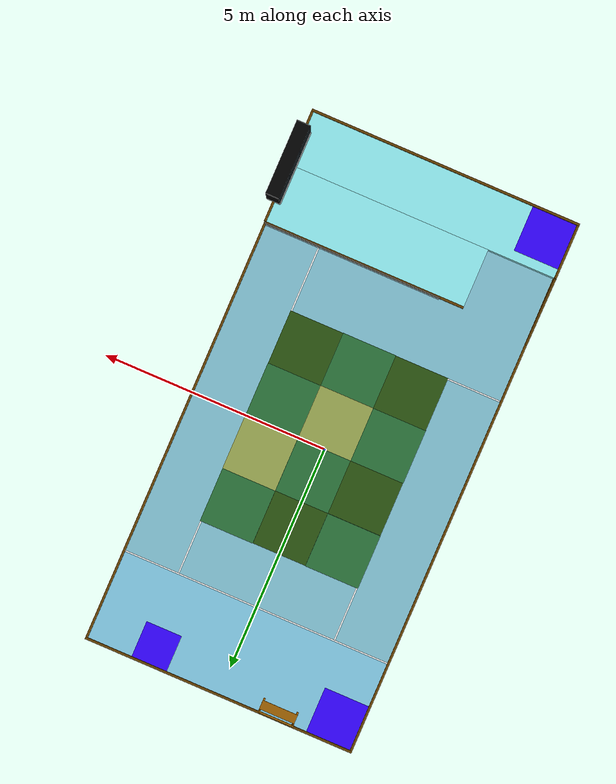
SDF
<sdf version="1.8">
 <world name="robocon_2026">
  <physics name="1ms" type="ignored">
   <max_step_size>0.001</max_step_size>
   <real_time_factor>1.0</real_time_factor>
  </physics>
  <plugin filename="ignition-gazebo-physics-system" name="ignition::gazebo::systems::Physics"/>
  <plugin filename="ignition-gazebo-user-commands-system" name="ignition::gazebo::systems::UserCommands"/>
  <plugin filename="ignition-gazebo-scene-broadcaster-system" name="ignition::gazebo::systems::SceneBroadcaster"/>
  <light type="directional" name="sun">
   <pose>0 0 5 0 0 0</pose>
   <diffuse>0.8 0.8 0.8 1</diffuse>
   <specular>0.2 0.2 0.2 1</specular>
  </light>
  <model name="game_field_floor_1">
   <static>true</static>
   <pose>0 4.6 0.025 0 0 0</pose>
   <link name="link">
    <collision name="collision"><geometry><box><size>6.0 2 0.05</size></box></geometry></collision>
    <visual name="visual">
     <geometry><box><size>6.0 2 0.05</size></box></geometry>
     <material>
      <ambient>0.5019607843 0.7803921569 0.8862745098 1</ambient>
      <diffuse>0.5019607843 0.7803921569 0.8862745098 1</diffuse>
      <specular>0.1 0.1 0.1 1</specular>
     </material>
    </visual>
   </link>
  </model>
  <model name="game_field_floor_2">
   <static>true</static>
   <pose>0 -1.4 0.025 0 0 0</pose>
   <link name="link">
    <collision name="collision"><geometry><box><size>6.0 10 0.05</size></box></geometry></collision>
    <visual name="visual">
     <geometry><box><size>6.0 10 0.05</size></box></geometry>
     <material>
      <ambient>0.5019607843 0.7490196078 0.8196078431 1</ambient>
      <diffuse>0.5019607843 0.7490196078 0.8196078431 1</diffuse>
      <specular>0.1 0.1 0.1 1</specular>
     </material>
    </visual>
   </link>
  </model>
  <model name="game_field_floor_3.1">
   <static>true</static>
   <pose>0.75 -4.55 0.25 0 0 0</pose>
   <link name="link">
    <collision name="collision"><geometry><box><size>4.5 1.3 0.4</size></box></geometry></collision>
    <visual name="visual">
     <geometry><box><size>4.5 1.3 0.4</size></box></geometry>
     <material>
      <ambient>0.5733333333 0.9333333333 0.9511111111 1</ambient>
      <diffuse>0.5733333333 0.9333333333 0.9511111111 1</diffuse>
      <specular>0.1 0.1 0.1 1</specular>
     </material>
    </visual>
   </link>
  </model>
  <model name="game_field_floor_3.2">
   <static>true</static>
   <pose>0 -5.8 0.25 0 0 0</pose>
   <link name="link">
    <collision name="collision"><geometry><box><size>6 1.2 0.4</size></box></geometry></collision>
    <visual name="visual">
     <geometry><box><size>6 1.2 0.4</size></box></geometry>
     <material>
      <ambient>0.5733333333 0.9333333333 0.9511111111 1</ambient>
      <diffuse>0.5733333333 0.9333333333 0.9511111111 1</diffuse>
      <specular>0.1 0.1 0.1 1</specular>
     </material>
    </visual>
   </link>
  </model>
  <model name="retry_zone_1">
   <static>true</static>
   <pose>-2.5 5.1 0.051 0 0 0</pose>
   <link name="link">
    <collision name="collision"><geometry><box><size>1 1 0.000001</size></box></geometry></collision>
    <visual name="visual">
     <geometry><box><size>1 1 0.000001</size></box></geometry>
     <material><ambient>0.1960784314 0 1 1</ambient><diffuse>0.1960784314 0 1 1</diffuse></material>
    </visual>
   </link>
  </model>
  <model name="retry_zone_2">
   <static>true</static>
   <pose>1.6 5.2 0.051 0 0 0</pose>
   <link name="link">
    <collision name="collision"><geometry><box><size>1 1 0.000001</size></box></geometry></collision>
    <visual name="visual">
     <geometry><box><size>0.8 0.8 0.000001</size></box></geometry>
     <material><ambient>0.1960784314 0 1 1</ambient><diffuse>0.1960784314 0 1 1</diffuse></material>
    </visual>
   </link>
  </model>
  <model name="retry_zone_3">
   <static>true</static>
   <pose>-2.5 -5.9 0.4501 0 0 0</pose>
   <link name="link">
    <collision name="collision"><geometry><box><size>1 1 0.000001</size></box></geometry></collision>
    <visual name="visual">
     <geometry><box><size>1 1 0.000001</size></box></geometry>
     <material><ambient>0.1960784314 0 1 1</ambient><diffuse>0.1960784314 0 1 1</diffuse></material>
    </visual>
   </link>
  </model>
  <model name="mat_space_1_H">
   <static>true</static>
   <pose>0 3.615 0.05001 0 0 0</pose>
   <link name="link">
    <collision name="collision"><geometry><box><size>6 0.03 0.00001</size></box></geometry></collision>
    <visual name="visual">
     <geometry><box><size>6 0.03 0.00001</size></box></geometry>
     <material><ambient>1 1 1 1</ambient><diffuse>1 1 1 1</diffuse><emissive>1 1 1 1</emissive></material>
    </visual>
   </link>
  </model>
  <model name="mat_space_2_V">
   <static>true</static>
   <pose>-1.785 3 0.05001 0 0 0</pose>
   <link name="link">
    <collision name="collision"><geometry><box><size>0.03 1.2 0.00001</size></box></geometry></collision>
    <visual name="visual">
     <geometry><box><size>0.03 1.2 0.00001</size></box></geometry>
     <material><ambient>1 1 1 1</ambient><diffuse>1 1 1 1</diffuse><emissive>1 1 1 1</emissive></material>
    </visual>
   </link>
  </model>
  <model name="mat_space_3_V">
   <static>true</static>
   <pose>1.785 3 0.05001 0 0 0</pose>
   <link name="link">
    <collision name="collision"><geometry><box><size>0.03 1.2 0.00001</size></box></geometry></collision>
    <visual name="visual">
     <geometry><box><size>0.03 1.2 0.00001</size></box></geometry>
     <material><ambient>1 1 1 1</ambient><diffuse>1 1 1 1</diffuse><emissive>1 1 1 1</emissive></material>
    </visual>
   </link>
  </model>
  <model name="mat_space_4_H">
   <static>true</static>
   <pose>-2.4 -2.385 0.05001 0 0 0</pose>
   <link name="link">
    <collision name="collision"><geometry><box><size>1.2 0.03 0.00001</size></box></geometry></collision>
    <visual name="visual">
     <geometry><box><size>1.2 0.03 0.00001</size></box></geometry>
     <material><ambient>1 1 1 1</ambient><diffuse>1 1 1 1</diffuse><emissive>1 1 1 1</emissive></material>
    </visual>
   </link>
  </model>
  <model name="mat_space_5_V">
   <static>true</static>
   <pose>1.785 -3.125 0.05001 0 0 0</pose>
   <link name="link">
    <collision name="collision"><geometry><box><size>0.03 1.45 0.00001</size></box></geometry></collision>
    <visual name="visual">
     <geometry><box><size>0.03 1.45 0.00001</size></box></geometry>
     <material><ambient>1 1 1 1</ambient><diffuse>1 1 1 1</diffuse><emissive>1 1 1 1</emissive></material>
    </visual>
   </link>
  </model>
  <model name="forest_box_1_400H">
   <static>true</static>
   <pose>-1.2 1.8 0.225 0 0 0</pose>
   <link name="link">
    <collision name="collision"><geometry><box><size>1.2 1.2 0.4</size></box></geometry></collision>
    <visual name="visual">
     <geometry><box><size>1.2 1.2 0.4</size></box></geometry>
     <material>
      <ambient>0.1647058824 0.4431372549 0.2196078431 1</ambient>
      <diffuse>0.1647058824 0.4431372549 0.2196078431 1</diffuse>
     </material>
    </visual>
   </link>
  </model>
  <model name="forest_box_2_200H">
   <static>true</static>
   <pose>0 1.8 0.125 0 0 0</pose>
   <link name="link">
    <collision name="collision"><geometry><box><size>1.2 1.2 0.2</size></box></geometry></collision>
    <visual name="visual">
     <geometry><box><size>1.2 1.2 0.2</size></box></geometry>
     <material>
      <ambient>0.1607843137 0.3215686275 0.06274509804 1</ambient>
      <diffuse>0.1607843137 0.3215686275 0.06274509804 1</diffuse>
     </material>
    </visual>
   </link>
  </model>
  <model name="forest_box_3_400H">
   <static>true</static>
   <pose>1.2 1.8 0.225 0 0 0</pose>
   <link name="link">
    <collision name="collision"><geometry><box><size>1.2 1.2 0.4</size></box></geometry></collision>
    <visual name="visual">
     <geometry><box><size>1.2 1.2 0.4</size></box></geometry>
     <material>
      <ambient>0.1647058824 0.4431372549 0.2196078431 1</ambient>
      <diffuse>0.1647058824 0.4431372549 0.2196078431 1</diffuse>
     </material>
    </visual>
   </link>
  </model>
  <model name="forest_box_4_200H">
   <static>true</static>
   <pose>-1.2 0.6 0.125 0 0 0</pose>
   <link name="link">
    <collision name="collision"><geometry><box><size>1.2 1.2 0.2</size></box></geometry></collision>
    <visual name="visual">
     <geometry><box><size>1.2 1.2 0.2</size></box></geometry>
     <material>
      <ambient>0.1607843137 0.3215686275 0.06274509804 1</ambient>
      <diffuse>0.1607843137 0.3215686275 0.06274509804 1</diffuse>
     </material>
    </visual>
   </link>
  </model>
  <model name="forest_box_5_400H">
   <static>true</static>
   <pose>0 0.6 0.225 0 0 0</pose>
   <link name="link">
    <collision name="collision"><geometry><box><size>1.2 1.2 0.4</size></box></geometry></collision>
    <visual name="visual">
     <geometry><box><size>1.2 1.2 0.4</size></box></geometry>
     <material>
      <ambient>0.1647058824 0.4431372549 0.2196078431 1</ambient>
      <diffuse>0.1647058824 0.4431372549 0.2196078431 1</diffuse>
     </material>
    </visual>
   </link>
  </model>
  <model name="forest_box_6_600H">
   <static>true</static>
   <pose>1.2 0.6 0.325 0 0 0</pose>
   <link name="link">
    <collision name="collision"><geometry><box><size>1.2 1.2 0.6</size></box></geometry></collision>
    <visual name="visual">
     <geometry><box><size>1.2 1.2 0.6</size></box></geometry>
     <material>
      <ambient>0.5960784314 0.6509803922 0.3137254902 1</ambient>
      <diffuse>0.5960784314 0.6509803922 0.3137254902 1</diffuse>
     </material>
    </visual>
   </link>
  </model>
  <model name="forest_box_7_400H">
   <static>true</static>
   <pose>-1.2 -0.6 0.225 0 0 0</pose>
   <link name="link">
    <collision name="collision"><geometry><box><size>1.2 1.2 0.4</size></box></geometry></collision>
    <visual name="visual">
     <geometry><box><size>1.2 1.2 0.4</size></box></geometry>
     <material>
      <ambient>0.1647058824 0.4431372549 0.2196078431 1</ambient>
      <diffuse>0.1647058824 0.4431372549 0.2196078431 1</diffuse>
     </material>
    </visual>
   </link>
  </model>
  <model name="forest_box_8_600H">
   <static>true</static>
   <pose>0 -0.6 0.325 0 0 0</pose>
   <link name="link">
    <collision name="collision"><geometry><box><size>1.2 1.2 0.6</size></box></geometry></collision>
    <visual name="visual">
     <geometry><box><size>1.2 1.2 0.6</size></box></geometry>
     <material>
      <ambient>0.5960784314 0.6509803922 0.3137254902 1</ambient>
      <diffuse>0.5960784314 0.6509803922 0.3137254902 1</diffuse>
     </material>
    </visual>
   </link>
  </model>
  <model name="forest_box_9_400H">
   <static>true</static>
   <pose>1.2 -0.6 0.225 0 0 0</pose>
   <link name="link">
    <collision name="collision"><geometry><box><size>1.2 1.2 0.4</size></box></geometry></collision>
    <visual name="visual">
     <geometry><box><size>1.2 1.2 0.4</size></box></geometry>
     <material>
      <ambient>0.1647058824 0.4431372549 0.2196078431 1</ambient>
      <diffuse>0.1647058824 0.4431372549 0.2196078431 1</diffuse>
     </material>
    </visual>
   </link>
  </model>
  <model name="forest_box_10_200H">
   <static>true</static>
   <pose>-1.2 -1.8 0.125 0 0 0</pose>
   <link name="link">
    <collision name="collision"><geometry><box><size>1.2 1.2 0.2</size></box></geometry></collision>
    <visual name="visual">
     <geometry><box><size>1.2 1.2 0.2</size></box></geometry>
     <material>
      <ambient>0.1607843137 0.3215686275 0.06274509804 1</ambient>
      <diffuse>0.1607843137 0.3215686275 0.06274509804 1</diffuse>
     </material>
    </visual>
   </link>
  </model>
  <model name="forest_box_11_400H">
   <static>true</static>
   <pose>0 -1.8 0.225 0 0 0</pose>
   <link name="link">
    <collision name="collision"><geometry><box><size>1.2 1.2 0.4</size></box></geometry></collision>
    <visual name="visual">
     <geometry><box><size>1.2 1.2 0.4</size></box></geometry>
     <material>
      <ambient>0.1647058824 0.4431372549 0.2196078431 1</ambient>
      <diffuse>0.1647058824 0.4431372549 0.2196078431 1</diffuse>
     </material>
    </visual>
   </link>
  </model>
  <model name="forest_box_12_200H">
   <static>true</static>
   <pose>1.2 -1.8 0.125 0 0 0</pose>
   <link name="link">
    <collision name="collision"><geometry><box><size>1.2 1.2 0.2</size></box></geometry></collision>
    <visual name="visual">
     <geometry><box><size>1.2 1.2 0.2</size></box></geometry>
     <material>
      <ambient>0.1607843137 0.3215686275 0.06274509804 1</ambient>
      <diffuse>0.1607843137 0.3215686275 0.06274509804 1</diffuse>
     </material>
    </visual>
   </link>
  </model>
  <model name="wall_north">
   <static>true</static>
   <pose>0 5.625 0.075 0 0 0</pose>
   <link name="link">
    <collision name="collision"><geometry><box><size>6.1 0.05 0.1</size></box></geometry></collision>
    <visual name="visual">
     <geometry><box><size>6.1 0.05 0.1</size></box></geometry>
     <material>
      <ambient>0.3921568627 0.2431372549 0 1</ambient>
      <diffuse>0.3921568627 0.2431372549 0 1</diffuse>
     </material>
    </visual>
   </link>
  </model>
  <model name="wall_south">
   <static>true</static>
   <pose>0 -6.425 0.5 0 0 0</pose>
   <link name="link">
    <collision name="collision"><geometry><box><size>6.1 0.05 0.1</size></box></geometry></collision>
    <visual name="visual">
     <geometry><box><size>6.1 0.05 0.1</size></box></geometry>
     <material>
      <ambient>0.3921568627 0.2431372549 0 1</ambient>
      <diffuse>0.3921568627 0.2431372549 0 1</diffuse>
     </material>
    </visual>
   </link>
  </model>
  <model name="wall_east">
   <static>true</static>
   <pose>3.025 -0.4 0.075 0 0 0</pose>
   <link name="link">
    <collision name="collision"><geometry><box><size>0.05 12.1 0.1</size></box></geometry></collision>
    <visual name="visual">
     <geometry><box><size>0.05 12.1 0.1</size></box></geometry>
     <material>
      <ambient>0.3921568627 0.2431372549 0 1</ambient>
      <diffuse>0.3921568627 0.2431372549 0 1</diffuse>
     </material>
    </visual>
   </link>
  </model>
  <model name="wall_west">
   <static>true</static>
   <pose>-3.025 -0.4 0.075 0 0 0</pose>
   <link name="link">
    <collision name="collision"><geometry><box><size>0.05 12.1 0.1</size></box></geometry></collision>
    <visual name="visual">
     <geometry><box><size>0.05 12.1 0.1</size></box></geometry>
     <material>
      <ambient>0.3921568627 0.2431372549 0 1</ambient>
      <diffuse>0.3921568627 0.2431372549 0 1</diffuse>
     </material>
    </visual>
   </link>
  </model>
  <model name="wall_south_3.1">
   <static>true</static>
   <pose>0.75 -3.875 0.5 0 0 0</pose>
   <link name="link">
    <collision name="collision"><geometry><box><size>4.5 0.05 0.1</size></box></geometry></collision>
    <visual name="visual">
     <geometry><box><size>4.5 0.05 0.1</size></box></geometry>
     <material>
      <ambient>0.3921568627 0.2431372549 0 1</ambient>
      <diffuse>0.3921568627 0.2431372549 0 1</diffuse>
     </material>
    </visual>
   </link>
  </model>
  <model name="wall_west_3.2">
   <static>true</static>
   <pose>-3.025 -5.8 0.5 0 0 0</pose>
   <link name="link">
    <collision name="collision"><geometry><box><size>0.05 1.2 0.1</size></box></geometry></collision>
    <visual name="visual">
     <geometry><box><size>0.05 1.2 0.1</size></box></geometry>
     <material>
      <ambient>0.3921568627 0.2431372549 0 1</ambient>
      <diffuse>0.3921568627 0.2431372549 0 1</diffuse>
     </material>
    </visual>
   </link>
  </model>
  <model name="wall_east_3.2">
   <static>true</static>
   <pose>3.025 -5.15 0.5 0 0 0</pose>
   <link name="link">
    <collision name="collision"><geometry><box><size>0.05 2.5 0.1</size></box></geometry></collision>
    <visual name="visual">
     <geometry><box><size>0.05 2.5 0.1</size></box></geometry>
     <material>
      <ambient>0.3921568627 0.2431372549 0 1</ambient>
      <diffuse>0.3921568627 0.2431372549 0 1</diffuse>
     </material>
    </visual>
   </link>
  </model>
  <model name="wall_west_ramp">
   <static>true</static>
   <pose>-3.025 -4.45 0.3 -0.261799 0 0</pose>
   <link name="link">
    <collision name="collision"><geometry><box><size>0.05 1.55241 0.1</size></box></geometry></collision>
    <visual name="visual">
     <geometry><box><size>0.05 1.55241 0.1</size></box></geometry>
     <material>
      <ambient>0.3921568627 0.2431372549 0 1</ambient>
      <diffuse>0.3921568627 0.2431372549 0 1</diffuse>
     </material>
    </visual>
   </link>
  </model>
  <model name="acrylic_fence">
   <static>true</static>
   <pose>1.025 -3.85 0.5 0 0 1.570796327</pose>
   <link name="link">
    <collision name="collision"><geometry><box><size>0.01 3.975 1.0</size></box></geometry></collision>
    <visual name="visual">
     <geometry><box><size>0.01 3.975 1.0</size></box></geometry>
     <transparency>0.3</transparency>
     <cast_shadows>false</cast_shadows>
    </visual>
   </link>
  </model>
  <model name="tictactoe_rack">
   <static>true</static>
   <pose>3.025 -5.15 0.45 0 0 1.570796327</pose>
   <link name="link">
    <collision name="base_col">
     <pose>0 0 0.2 0 0 0</pose>
     <geometry><box><size>1.62 0.32 0.4</size></box></geometry>
    </collision>
    <visual name="base_vis">
     <pose>0 0 0.2 0 0 0</pose>
     <geometry><box><size>1.62 0.32 0.4</size></box></geometry>
     <material><ambient>1 1 1 1</ambient><diffuse>1 1 1 1</diffuse></material>
    </visual>
    <collision name="v1_col">
     <pose>-0.81 0 1.21 0 0 0</pose>
     <geometry><box><size>0.02 0.3 1.62</size></box></geometry>
    </collision>
    <visual name="v1">
     <pose>-0.81 0 1.21 0 0 0</pose>
     <geometry><box><size>0.02 0.3 1.62</size></box></geometry>
     <material><ambient>0 0 0 1</ambient><diffuse>0 0 0 1</diffuse></material>
    </visual>
    <collision name="v2_col">
     <pose>-0.27 0 1.21 0 0 0</pose>
     <geometry><box><size>0.02 0.3 1.62</size></box></geometry>
    </collision>
    <visual name="v2">
     <pose>-0.27 0 1.21 0 0 0</pose>
     <geometry><box><size>0.02 0.3 1.62</size></box></geometry>
     <material><ambient>0 0 0 1</ambient><diffuse>0 0 0 1</diffuse></material>
    </visual>
    <collision name="v3_col">
     <pose>0.27 0 1.21 0 0 0</pose>
     <geometry><box><size>0.02 0.3 1.62</size></box></geometry>
    </collision>
    <visual name="v3">
     <pose>0.27 0 1.21 0 0 0</pose>
     <geometry><box><size>0.02 0.3 1.62</size></box></geometry>
     <material><ambient>0 0 0 1</ambient><diffuse>0 0 0 1</diffuse></material>
    </visual>
    <collision name="v4_col">
     <pose>0.81 0 1.21 0 0 0</pose>
     <geometry><box><size>0.02 0.3 1.62</size></box></geometry>
    </collision>
    <visual name="v4">
     <pose>0.81 0 1.21 0 0 0</pose>
     <geometry><box><size>0.02 0.3 1.62</size></box></geometry>
     <material><ambient>0 0 0 1</ambient><diffuse>0 0 0 1</diffuse></material>
    </visual>
    <collision name="h1_col">
     <pose>0 0 0.41 0 0 0</pose>
     <geometry><box><size>1.62 0.3 0.02</size></box></geometry>
    </collision>
    <visual name="h1">
     <pose>0 0 0.41 0 0 0</pose>
     <geometry><box><size>1.62 0.3 0.02</size></box></geometry>
     <material><ambient>0 0 0 1</ambient><diffuse>0 0 0 1</diffuse></material>
    </visual>
    <collision name="h2_col">
     <pose>0 0 0.95 0 0 0</pose>
     <geometry><box><size>1.62 0.3 0.02</size></box></geometry>
    </collision>
    <visual name="h2">
     <pose>0 0 0.95 0 0 0</pose>
     <geometry><box><size>1.62 0.3 0.02</size></box></geometry>
     <material><ambient>0 0 0 1</ambient><diffuse>0 0 0 1</diffuse></material>
    </visual>
    <collision name="h3_col">
     <pose>0 0 1.49 0 0 0</pose>
     <geometry><box><size>1.62 0.3 0.02</size></box></geometry>
    </collision>
    <visual name="h3">
     <pose>0 0 1.49 0 0 0</pose>
     <geometry><box><size>1.62 0.3 0.02</size></box></geometry>
     <material><ambient>0 0 0 1</ambient><diffuse>0 0 0 1</diffuse></material>
    </visual>
    <collision name="h4_col">
     <pose>0 0 2.03 0 0 0</pose>
     <geometry><box><size>1.62 0.3 0.02</size></box></geometry>
    </collision>
    <visual name="h4">
     <pose>0 0 2.03 0 0 0</pose>
     <geometry><box><size>1.62 0.3 0.02</size></box></geometry>
     <material><ambient>0 0 0 1</ambient><diffuse>0 0 0 1</diffuse></material>
    </visual>
    <collision name="back_col">
     <pose>0 0.15 1.21 0 0 0</pose>
     <geometry><box><size>1.62 0.01 1.62</size></box></geometry>
    </collision>
    <visual name="acrylic_back">
     <pose>0 0.15 1.21 0 0 0</pose>
     <geometry><box><size>1.62 0.01 1.62</size></box></geometry>
     <material><ambient>0.7 0.9 1 0.2</ambient><diffuse>0.7 0.9 1 0.2</diffuse></material>
    </visual>
   </link>
  </model>
  <model name="staff_rack">
   <pose>-1.3 5.45 0.05 0 0 0</pose>
   <static>true</static>
   <link name="link">
    <visual name="left_foot_visual">
     <pose>-0.38 0 0.02 0 0 0</pose>
     <geometry><box><size>0.04 0.30 0.04</size></box></geometry>
     <material><ambient>0.608 0.373 0 1</ambient><diffuse>0.608 0.373 0 1</diffuse></material>
    </visual>
    <collision name="left_foot_collision">
     <pose>-0.38 0 0.02 0 0 0</pose>
     <geometry><box><size>0.04 0.30 0.04</size></box></geometry>
    </collision>
    <visual name="right_foot_visual">
     <pose>0.38 0 0.02 0 0 0</pose>
     <geometry><box><size>0.04 0.30 0.04</size></box></geometry>
     <material><ambient>0.608 0.373 0 1</ambient><diffuse>0.608 0.373 0 1</diffuse></material>
    </visual>
    <collision name="right_foot_collision">
     <pose>0.38 0 0.02 0 0 0</pose>
     <geometry><box><size>0.04 0.30 0.04</size></box></geometry>
    </collision>
    <visual name="left_post_visual">
     <pose>-0.38 0.13 0.27 0 0 0</pose>
     <geometry><box><size>0.04 0.04 0.46</size></box></geometry>
     <material><ambient>0.608 0.373 0 1</ambient><diffuse>0.608 0.373 0 1</diffuse></material>
    </visual>
    <collision name="left_post_collision">
     <pose>-0.38 0.13 0.27 0 0 0</pose>
     <geometry><box><size>0.04 0.04 0.46</size></box></geometry>
    </collision>
    <visual name="right_post_visual">
     <pose>0.38 0.13 0.27 0 0 0</pose>
     <geometry><box><size>0.04 0.04 0.46</size></box></geometry>
     <material><ambient>0.608 0.373 0 1</ambient><diffuse>0.608 0.373 0 1</diffuse></material>
    </visual>
    <collision name="right_post_collision">
     <pose>0.38 0.13 0.27 0 0 0</pose>
     <geometry><box><size>0.04 0.04 0.46</size></box></geometry>
    </collision>
    <visual name="top_bar_visual">
     <pose>0 0.13 0.48 0 0 0</pose>
     <geometry><box><size>0.80 0.04 0.04</size></box></geometry>
     <material><ambient>0.608 0.373 0 1</ambient><diffuse>0.608 0.373 0 1</diffuse></material>
    </visual>
    <collision name="top_bar_collision">
     <pose>0 0.13 0.48 0 0 0</pose>
     <geometry><box><size>0.80 0.04 0.04</size></box></geometry>
    </collision>
    <visual name="shelf_visual">
     <pose>0 0.0 0.08 0 0 0</pose>
     <geometry><box><size>0.80 0.20 0.02</size></box></geometry>
     <material><ambient>0.608 0.373 0 1</ambient><diffuse>0.608 0.373 0 1</diffuse></material>
    </visual>
    <collision name="shelf_collision">
     <pose>0 0.0 0.08 0 0 0</pose>
     <geometry><box><size>0.80 0.20 0.02</size></box></geometry>
    </collision>
   </link>
  </model>
 </world>
</sdf>
